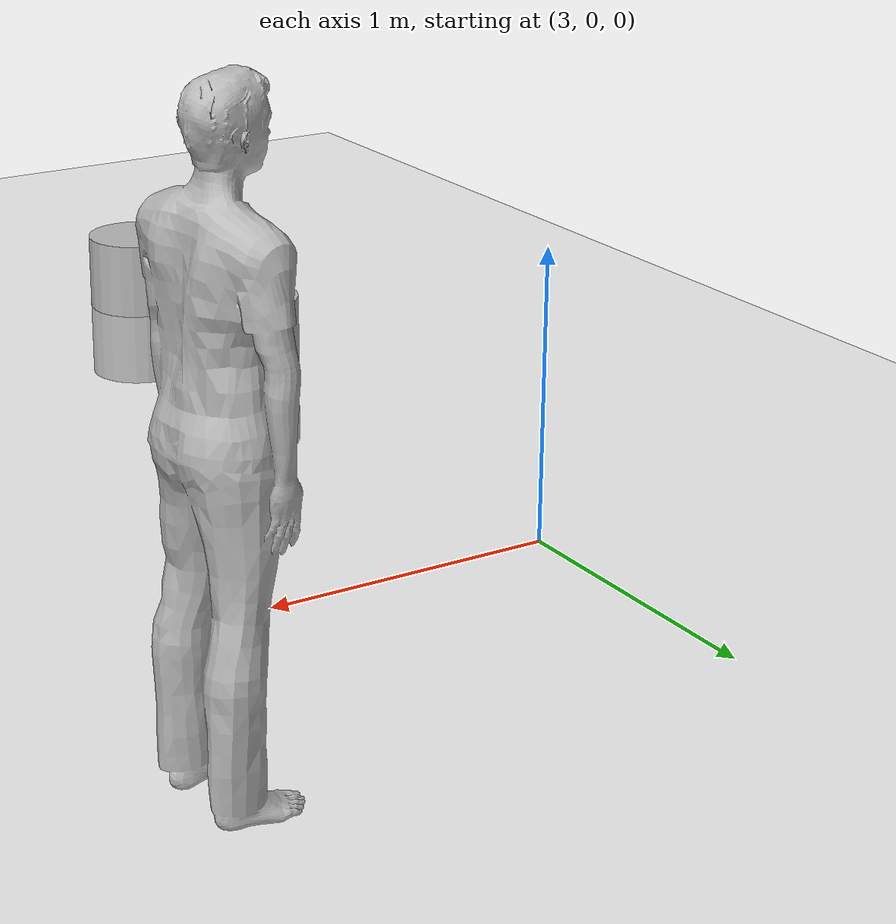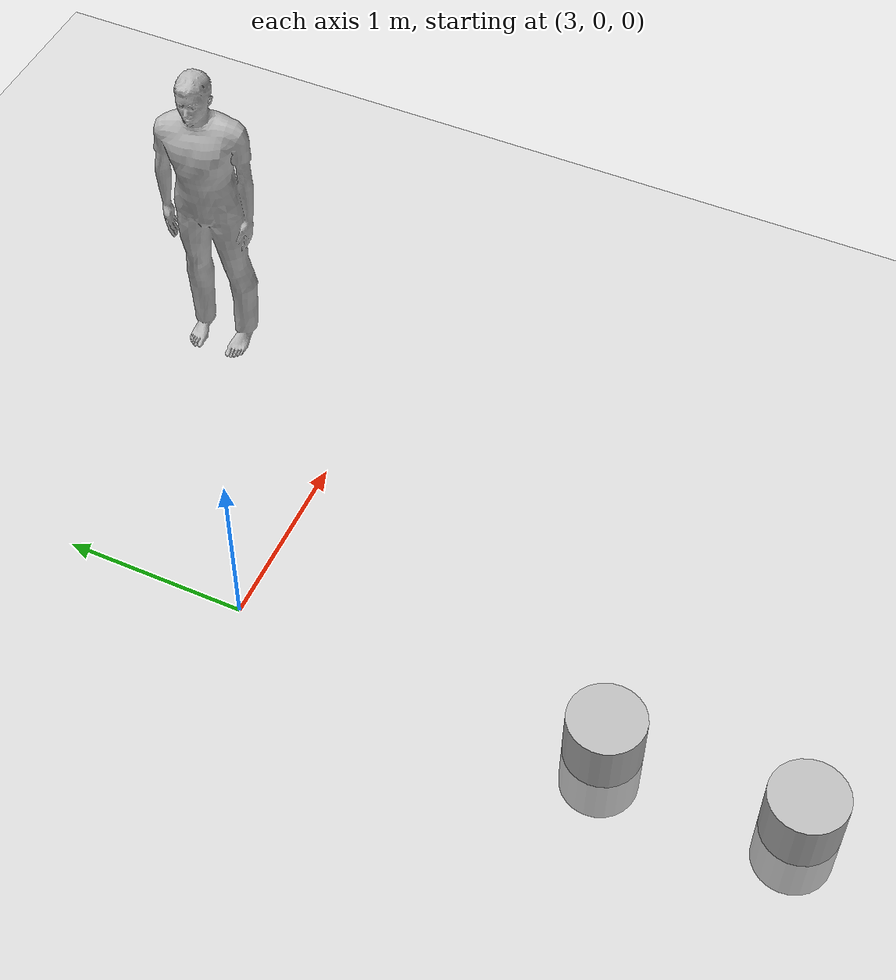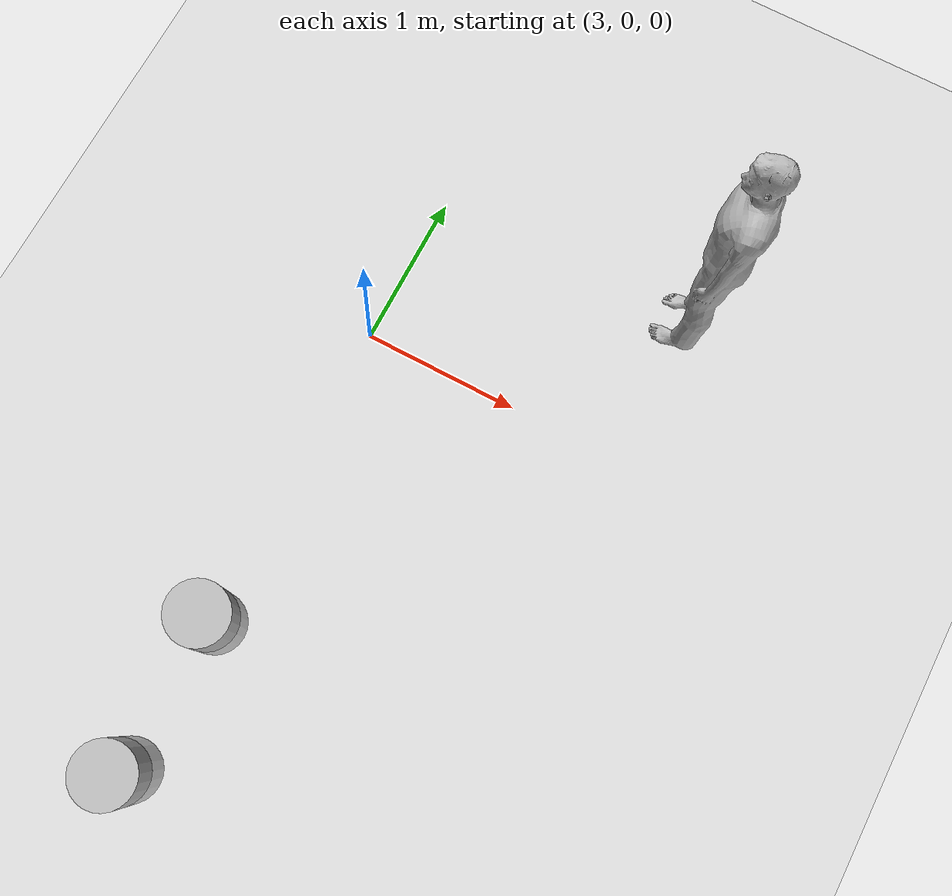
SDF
<?xml version="1.0"?>
<sdf version='1.6'>
  <world name='default'>

    <light name='sun' type='directional'>
      <cast_shadows>1</cast_shadows>
      <pose frame=''>0 0 10 1.45 0 0</pose>
      <diffuse>1 1 1 1</diffuse>
      <specular>0 0 0 0</specular>
      <attenuation>
        <range>1000</range>
        <constant>0</constant>
        <linear>0.</linear>
        <quadratic>0</quadratic>
      </attenuation>
      <direction>-0.01 0.01 -1</direction>
    </light>

    <gravity>0 0 -1.65</gravity>

    <magnetic_field>0
      0 0</magnetic_field>

    <atmosphere type='adiabatic'>
      <pressure>0</pressure>
      <temperature>200</temperature>
    </atmosphere>

    <gui fullscreen='0'>
      <camera name='user_camera'>
        <pose frame=''>15 -5 7 0 0.627643 2.55455</pose>
        <view_controller>orbit</view_controller>
        <projection_type>perspective</projection_type>
      </camera>
    </gui>

    <physics
      name='default_physics' default='0' type='ode'>
      <max_step_size>0.001</max_step_size>
      <real_time_factor>1</real_time_factor>
      <real_time_update_rate>1000</real_time_update_rate>
    </physics>

    <scene>
      <ambient>0 0 0 1</ambient>
      <background>0 0 0 0 1</background>
      <shadows>1</shadows>
      <grid>0</grid>
    </scene>

    <model name='ground_plane'>
      <static>1</static>
      <link name='link'>
        <collision name='collision'>
          <geometry>
            <plane>
              <normal>0 0 1</normal>
              <size>10 10</size>
            </plane>
          </geometry>
          <surface>
            <friction>
              <ode>
                <mu>100</mu>
                <mu2>50</mu2>
              </ode>
              <torsional>
                <ode />
              </torsional>
            </friction>
            <contact>
              <ode />
            </contact>
            <bounce />
          </surface>
          <max_contacts>10</max_contacts>
        </collision>
        <visual name='visual'>
          <cast_shadows>0</cast_shadows>
          <geometry>
            <plane>
              <normal>0 0 1</normal>
              <size>100 100</size>
            </plane>
          </geometry>
          <material>
            <script>
              <uri>file://media/materials/scripts/gazebo.material</uri>
              <name>Gazebo/Grey</name>
            </script>
          </material>
        </visual>
        <self_collide>0</self_collide>
        <kinematic>0</kinematic>
      </link>
    </model>

    <model name='person_standing'>
      <pose frame=''>4.75 1 0 0 0 -1.5</pose>
      <link name='link'>
        <inertial>
          <pose frame=''>0 -0.1 0.95 0 -0 0</pose>
          <mass>80</mass>
          <inertia>
            <ixx>24.88</ixx>
            <ixy>0</ixy>
            <ixz>0</ixz>
            <iyy>25.73</iyy>
            <iyz>0</iyz>
            <izz>2.48</izz>
          </inertia>
        </inertial>
        <collision name='bottom'>
          <pose frame=''>0 -0.1 0.01 0 -0 0</pose>
          <geometry>
            <box>
              <size>0.5 0.35 0.001</size>
            </box>
          </geometry>
          <max_contacts>10</max_contacts>
          <surface>
            <contact>
              <ode />
            </contact>
            <bounce />
            <friction>
              <torsional>
                <ode />
              </torsional>
              <ode />
            </friction>
          </surface>
        </collision>
        <collision name='person'>
          <pose frame=''>0 0 0.02 0.04 -0 0</pose>
          <geometry>
            <mesh>
              <uri>model://person_standing/meshes/standing.dae</uri>
            </mesh>
          </geometry>
          <max_contacts>10</max_contacts>
          <surface>
            <contact>
              <ode />
            </contact>
            <bounce />
            <friction>
              <torsional>
                <ode />
              </torsional>
              <ode />
            </friction>
          </surface>
        </collision>
        <visual name='visual'>
          <pose frame=''>0 0 0.02 0.04 -0 0</pose>
          <geometry>
            <mesh>
              <uri>model://person_standing/meshes/standing.dae</uri>
            </mesh>
          </geometry>
        </visual>
        <self_collide>0</self_collide>
        <kinematic>0</kinematic>
      </link>
    </model>

    <model name='cylinder_diffuse'>
      <pose frame=''>3 -3 0 0 0 0</pose>
      <link name="base_link">
        <visual name='visual'>
          <geometry>
            <cylinder>
              <length>0.6</length>
              <radius>0.2</radius>
            </cylinder>
          </geometry>
        </visual>
        <collision name='collison'>
          <laser_retro>100.0</laser_retro>
          <geometry>
            <cylinder>
              <length>0.6</length>
              <radius>0.2</radius>
            </cylinder>
          </geometry>
        </collision>
        <inertial>
          <mass>10</mass>
          <inertia>
            <ixx>0.4</ixx>
            <ixy>0</ixy>
            <ixz>0</ixz>
            <iyy>0.4</iyy>
            <iyz>0</iyz>
            <izz>0.2</izz>
          </inertia>
        </inertial>
      </link>
    </model>

    <model
      name='cylinder_shiny'>
      <pose frame=''>3 -2 0 0 0 0</pose>
      <link name="base_link">
        <visual name='visual'>
          <geometry>
            <cylinder>
              <length>0.6</length>
              <radius>0.2</radius>
            </cylinder>
          </geometry>
        </visual>
        <collision name='collison'>
          <laser_retro>100.0</laser_retro> <!-- this reprensents the diffuse retroreflection-->
          <laser_spec>50.0</laser_spec> <!-- this represents the specular retroreflection-->
          <geometry>
            <cylinder>
              <length>0.6</length>
              <radius>0.2</radius>
            </cylinder>
          </geometry>
        </collision>
        <inertial>
          <mass>10</mass>
          <inertia>
            <ixx>0.4</ixx>
            <ixy>0</ixy>
            <ixz>0</ixz>
            <iyy>0.4</iyy>
            <iyz>0</iyz>
            <izz>0.2</izz>
          </inertia>
        </inertial>
      </link>
    </model>

  </world>
</sdf>
